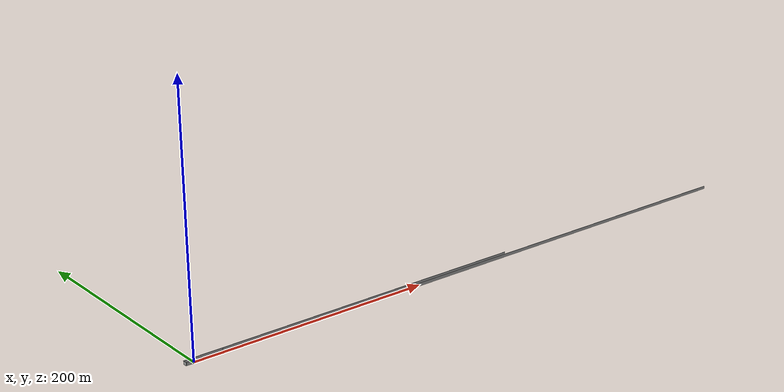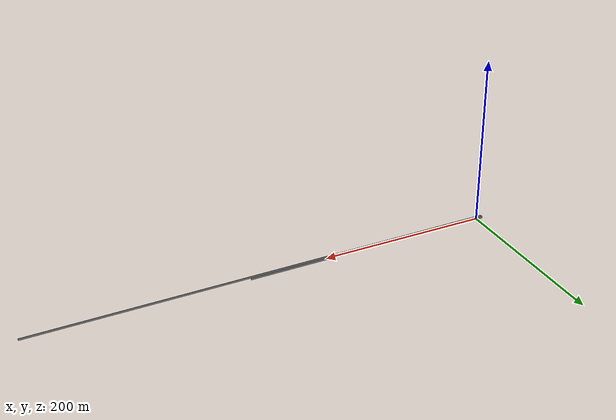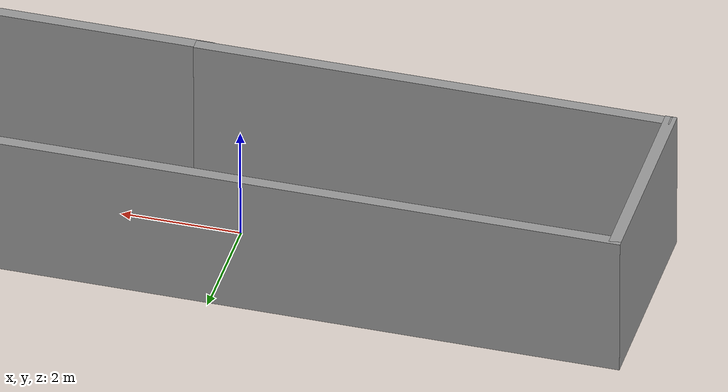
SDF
<?xml version='1.0'?>
<sdf version='1.4'>
  <model name='learner_CorridorOfDeath'>
    <link name='Wall_0'>
      <collision name='Wall_0_Collision'>
        <geometry>
          <box>
            <size>7.94125 0.2 2.5</size>
          </box>
        </geometry>
        <pose>0 0 1.25 0 -0 0</pose>
      </collision>
      <visual name='Wall_0_Visual'>
        <pose>0 0 1.25 0 -0 0</pose>
        <geometry>
          <box>
            <size>7.94125 0.2 2.5</size>
          </box>
        </geometry>
        <material>
          <script>
            <uri>file://media/materials/scripts/gazebo.material</uri>
            <name>Gazebo/Grey</name>
          </script>
        </material>
      </visual>
      <velocity_decay>
        <linear>0</linear>
        <angular>0</angular>
      </velocity_decay>
      <pose>-2.79358 -1.50644 0 0 -0 3.14159</pose>
    </link>
    <link name='Wall_10'>
      <collision name='Wall_10_Collision'>
        <geometry>
          <box>
            <size>519.45 0.2 2.5</size>
          </box>
        </geometry>
        <pose>0 0 1.25 0 -0 0</pose>
      </collision>
      <visual name='Wall_10_Visual'>
        <pose>0 0 1.25 0 -0 0</pose>
        <geometry>
          <box>
            <size>519.45 0.2 2.5</size>
          </box>
        </geometry>
        <material>
          <script>
            <uri>file://media/materials/scripts/gazebo.material</uri>
            <name>Gazebo/Grey</name>
          </script>
        </material>
      </visual>
      <velocity_decay>
        <linear>0</linear>
        <angular>0</angular>
      </velocity_decay>
      <pose>283.774 -1.50949 0 0 -0 0</pose>
    </link>
    <link name='Wall_2'>
      <collision name='Wall_2_Collision'>
        <geometry>
          <box>
            <size>3.56134 0.2 2.5</size>
          </box>
        </geometry>
        <pose>0 0 1.25 0 -0 0</pose>
      </collision>
      <visual name='Wall_2_Visual'>
        <pose>0 0 1.25 0 -0 0</pose>
        <geometry>
          <box>
            <size>3.56134 0.2 2.5</size>
          </box>
        </geometry>
        <material>
          <script>
            <uri>file://media/materials/scripts/gazebo.material</uri>
            <name>Gazebo/Grey</name>
          </script>
        </material>
      </visual>
      <velocity_decay>
        <linear>0</linear>
        <angular>0</angular>
      </velocity_decay>
      <pose>-6.74026 0.159021 0 0 -0 1.5708</pose>
    </link>
    <link name='Wall_3'>
      <collision name='Wall_3_Collision'>
        <geometry>
          <box>
            <size>31.3025 0.2 2.5</size>
          </box>
        </geometry>
        <pose>0 0 1.25 0 -0 0</pose>
      </collision>
      <visual name='Wall_3_Visual'>
        <pose>0 0 1.25 0 -0 0</pose>
        <geometry>
          <box>
            <size>31.3025 0.2 2.5</size>
          </box>
        </geometry>
        <material>
          <script>
            <uri>file://media/materials/scripts/gazebo.material</uri>
            <name>Gazebo/Grey</name>
          </script>
        </material>
      </visual>
      <velocity_decay>
        <linear>0</linear>
        <angular>0</angular>
      </velocity_decay>
      <pose>8.81101 1.83969 0 0 -0 0</pose>
    </link>
    <link name='Wall_5'>
      <collision name='Wall_5_Collision'>
        <geometry>
          <box>
            <size>23.5429 0.2 2.5</size>
          </box>
        </geometry>
        <pose>0 0 1.25 0 -0 0</pose>
      </collision>
      <visual name='Wall_5_Visual'>
        <pose>0 0 1.25 0 -0 0</pose>
        <geometry>
          <box>
            <size>23.5429 0.2 2.5</size>
          </box>
        </geometry>
        <material>
          <script>
            <uri>file://media/materials/scripts/gazebo.material</uri>
            <name>Gazebo/Grey</name>
          </script>
        </material>
      </visual>
      <velocity_decay>
        <linear>0</linear>
        <angular>0</angular>
      </velocity_decay>
      <pose>12.6504 -1.51812 0 0 -0 0</pose>
    </link>
    <link name='Wall_8'>
      <collision name='Wall_8_Collision'>
        <geometry>
          <box>
            <size>268.03 0.2 2.5</size>
          </box>
        </geometry>
        <pose>0 0 1.25 0 -0 0</pose>
      </collision>
      <visual name='Wall_8_Visual'>
        <pose>0 0 1.25 0 -0 0</pose>
        <geometry>
          <box>
            <size>268.03 0.2 2.5</size>
          </box>
        </geometry>
        <material>
          <script>
            <uri>file://media/materials/scripts/gazebo.material</uri>
            <name>Gazebo/Grey</name>
          </script>
        </material>
      </visual>
      <velocity_decay>
        <linear>0</linear>
        <angular>0</angular>
      </velocity_decay>
      <pose>158.222 1.79108 0 0 -0 0</pose>
    </link>
    <static>1</static>
  </model>
</sdf>
